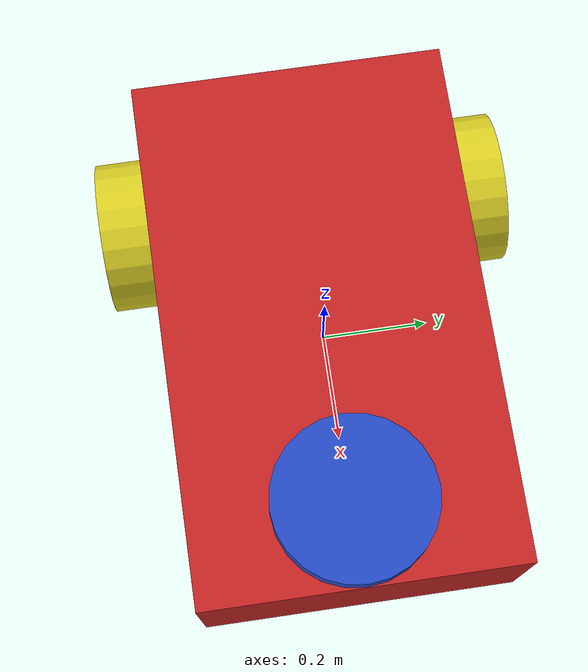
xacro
<?xml version="1.0"?>
<robot name="differential_drive_robot_2" xmlns:xacro="http://www.ros.org/wiki/xacro">

<xacro:property name="pi_constant" value="3.14159265"/>

<xacro:property name="body_link_x_dim" value="1" />
<xacro:property name="body_link_y_dim" value="0.6" />
<xacro:property name="body_link_z_dim" value="0.3" />

<xacro:property name="wheel_link_radius" value="0.15" />
<xacro:property name="wheel_link_length" value="0.1" />
<xacro:property name="wheel_link_z_location" value="-0.1" />

<xacro:property name="caster_link_radius" value="0.15" />
<xacro:property name="caster_link_z_location" value="-0.1" />

<xacro:property name="lidar_link_radius" value="0.15" />
<xacro:property name="lidar_link_length" value="0.05" />

<xacro:property name="body_density" value="2710.0" />
<xacro:property name="wheel_density" value="2710.0" />
<xacro:property name="caster_density" value="2710.0" />
<xacro:property name="lidar_density" value="2710.0" />

<xacro:property name="body_mass" value="${body_density*body_link_x_dim*body_link_y_dim*body_link_z_dim}" />
<xacro:property name="wheel_mass" value="${wheel_density*pi_constant*wheel_link_radius*wheel_link_radius*wheel_link_length}" />
<xacro:property name="caster_mass" value="${caster_density*(4.0/3.0)*pi_constant*caster_link_radius*caster_link_radius*caster_link_radius}" />
<xacro:property name="lidar_mass" value="${lidar_density*pi_constant*lidar_link_radius*lidar_link_radius*lidar_link_length}" />

<xacro:property name="Iz_wheel" value="${0.5*wheel_mass*wheel_link_radius*wheel_link_radius}" />
<xacro:property name="I_wheel" value="${(1.0/12.0)*wheel_mass*(3.0*wheel_link_radius*wheel_link_radius+wheel_link_length*wheel_link_length)}" />

<xacro:property name="I_caster" value="${(2.0/5.0)*caster_mass*caster_link_radius*caster_link_radius}" />

<xacro:property name="Iz_lidar" value="${0.5*lidar_mass*lidar_link_radius*lidar_link_radius}" />
<xacro:property name="I_lidar" value="${(1.0/12.0)*lidar_mass*(3.0*lidar_link_radius*lidar_link_radius+lidar_link_length*lidar_link_length)}" />

<xacro:macro name="inertia_wheel">
  <inertial>
      <origin rpy="0 0 0" xyz="0 0 0" />
      <mass value="${wheel_mass}" />
      <inertia ixx="${I_wheel}" ixy="0.0" ixz="0.0" iyy="${I_wheel}" iyz="0" izz="${Iz_wheel}" />
  </inertial>
</xacro:macro>

<xacro:macro name="inertia_caster">
  <inertial>
      <origin rpy="0 0 0" xyz="0 0 0" />
      <mass value="${caster_mass}" />
      <inertia ixx="${I_caster}" ixy="0.0" ixz="0.0" iyy="${I_caster}" iyz="0" izz="${I_caster}" />
  </inertial>
</xacro:macro>

<xacro:macro name="inertia_lidar">
  <inertial>
      <origin rpy="0 0 0" xyz="0 0 0" />
      <mass value="${caster_mass}" />
      <inertia ixx="${I_lidar}" ixy="0.0" ixz="0.0" iyy="${I_lidar}" iyz="0" izz="${Iz_lidar}" />
  </inertial>
</xacro:macro>

<xacro:include filename="$(find yolobot_gazebo)/model/robot.gazebo" />

<link name="base_footprint"> </link>

<joint name="dummy_joint" type="fixed">
  <parent link="base_footprint" />
  <child link="base_link" />
</joint>

<link name="base_link">
  <visual>
    <geometry>
      <box size="${body_link_x_dim} ${body_link_y_dim} ${body_link_z_dim}" />
    </geometry>
    <origin rpy="0 0 0" xyz="0 0 0" />
  </visual>

  <collision>
    <geometry>
      <box size="${body_link_x_dim} ${body_link_y_dim} ${body_link_z_dim}" />
    </geometry>
    <origin rpy="0 0 0" xyz="0 0 0" />
  </collision>

  <inertial>
    <origin rpy="0 0 0" xyz="0 0 0" />
    <mass value="${body_mass}" />
    <inertia
      ixx="${(1.0/12.0)*body_mass*(body_link_y_dim*body_link_y_dim+body_link_z_dim*body_link_z_dim)}"
      ixy="0" ixz="0"
      iyy="${(1.0/12.0)*body_mass*(body_link_x_dim*body_link_x_dim+body_link_z_dim*body_link_z_dim)}"
      iyz="0"
      izz="${(1.0/12.0)*body_mass*(body_link_y_dim*body_link_y_dim+body_link_x_dim*body_link_x_dim)}" />
  </inertial>
</link>

<joint name="wheel1_joint" type="continuous">
  <parent link="base_link" />
  <child link="wheel1_link" />
  <origin xyz="${-2*wheel_link_radius} ${-body_link_y_dim/2-wheel_link_length/2} ${wheel_link_z_location}" rpy="0 0 0" />
  <axis xyz="0 1 0" />
  <limit effort="1000" velocity="1000"/>
  <dynamics damping="1.0" friction="1.0" />
</joint>

<link name="wheel1_link">
  <visual>
    <origin rpy="1.570795 0 0" xyz="0 0 0" />
    <geometry>
      <cylinder length="${wheel_link_length}" radius="${wheel_link_radius}" />
    </geometry>
  </visual>

  <collision>
    <origin rpy="1.570795 0 0" xyz="0 0 0" />
    <geometry>
      <cylinder length="${wheel_link_length}" radius="${wheel_link_radius}" />
    </geometry>
  </collision>

  <xacro:inertia_wheel />
</link>

<joint name="wheel2_joint" type="continuous">
  <parent link="base_link" />
  <child link="wheel2_link" />
  <origin xyz="${-2*wheel_link_radius} ${body_link_y_dim/2+wheel_link_length/2} ${wheel_link_z_location}" rpy="0 0 0" />
  <axis xyz="0 1 0" />
  <limit effort="1000" velocity="1000"/>
  <dynamics damping="1.0" friction="1.0" />
</joint>

<link name="wheel2_link">
  <visual>
    <origin rpy="1.570795 0 0" xyz="0 0 0" />
    <geometry>
      <cylinder length="${wheel_link_length}" radius="${wheel_link_radius}" />
    </geometry>
  </visual>

  <collision>
    <origin rpy="1.570795 0 0" xyz="0 0 0" />
    <geometry>
      <cylinder length="${wheel_link_length}" radius="${wheel_link_radius}" />
    </geometry>
  </collision>

  <xacro:inertia_wheel />
</link>

<joint name="caster_joint" type="fixed">
  <parent link="base_link" />
  <child link="caster_link" />
  <origin xyz="${2*caster_link_radius} 0 ${caster_link_z_location}" rpy="0 0 0" />
</joint>

<link name="caster_link">
  <visual>
    <origin rpy="0 0 0" xyz="0 0 0" />
    <geometry>
      <sphere radius="${caster_link_radius}" />
    </geometry>
  </visual>

  <collision>
    <origin rpy="0 0 0" xyz="0 0 0" />
    <geometry>
      <sphere radius="${caster_link_radius}" />
    </geometry>
  </collision>

  <xacro:inertia_caster />
</link>

<joint name="camera_joint" type="fixed">
  <parent link="base_link" />
  <child link="camera_link" />
  <origin xyz="0.35 0 0.18" rpy="0 0 0" />
</joint>

<link name="camera_link" >
  <visual>
    <origin rpy="0 0 0" xyz="0 0 0" />
    <geometry>
      <cylinder length="${lidar_link_length}" radius="${lidar_link_radius}" />
    </geometry>
  </visual>

  <collision>
    <origin rpy="0 0 0" xyz="0 0 0" />
    <geometry>
      <cylinder length="${lidar_link_length}" radius="${lidar_link_radius}" />
    </geometry>
  </collision>

  <xacro:inertia_lidar />

</link>

<link name="camera_optical_frame"/>

<joint name="camera_optical_joint" type="fixed">
  <parent link="camera_link" />
  <child link="camera_optical_frame" />
  <origin xyz="0.15 0 0.1" rpy="0 0 0" />
</joint>

</robot>
